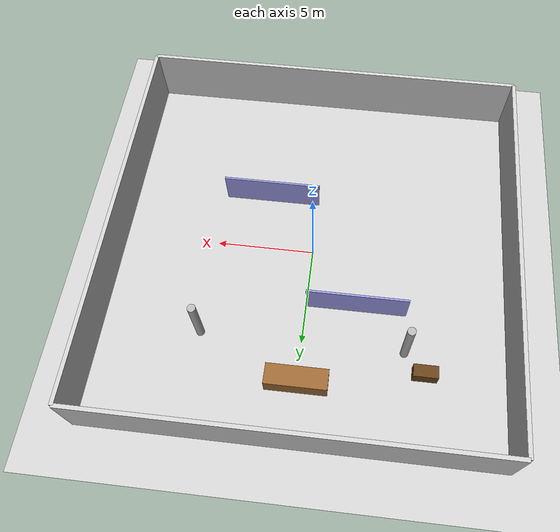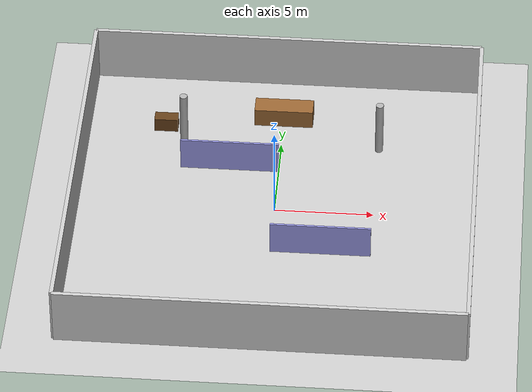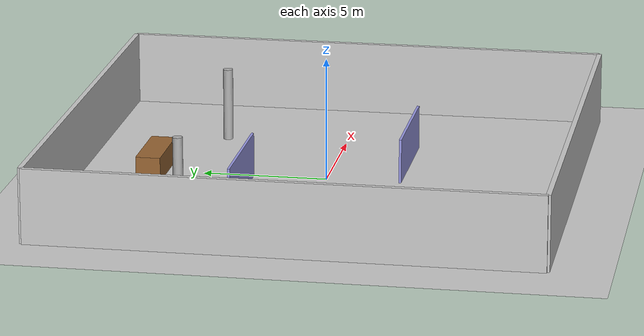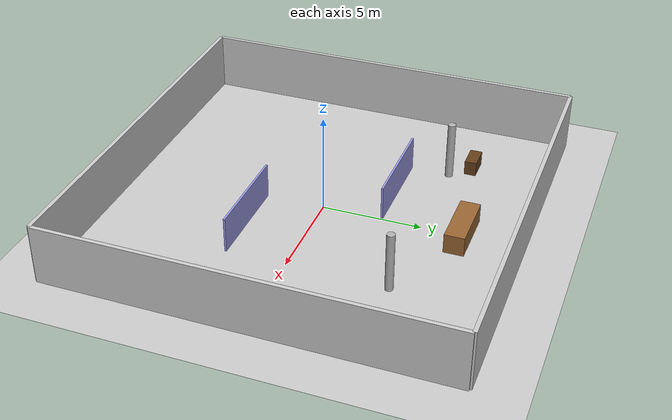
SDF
<?xml version="1.0"?>
<sdf version="1.6">
  <world name="office_world">

    <gravity>0 0 -9.81</gravity>

    <include>
      <uri>model://sun</uri>
    </include>

    <include>
      <uri>model://ground_plane</uri>
    </include>

    <!-- North wall -->
    <model name="north_wall">
      <static>true</static>
      <pose>0 10 1.5 0 0 0</pose>
      <link name="link">
        <collision name="col">
          <geometry><box><size>20 0.2 3.0</size></box></geometry>
        </collision>
        <visual name="vis">
          <geometry><box><size>20 0.2 3.0</size></box></geometry>
          <material><ambient>0.8 0.8 0.8 1</ambient></material>
        </visual>
      </link>
    </model>

    <!-- South wall -->
    <model name="south_wall">
      <static>true</static>
      <pose>0 -10 1.5 0 0 0</pose>
      <link name="link">
        <collision name="col">
          <geometry><box><size>20 0.2 3.0</size></box></geometry>
        </collision>
        <visual name="vis">
          <geometry><box><size>20 0.2 3.0</size></box></geometry>
          <material><ambient>0.8 0.8 0.8 1</ambient></material>
        </visual>
      </link>
    </model>

    <!-- East wall -->
    <model name="east_wall">
      <static>true</static>
      <pose>10 0 1.5 0 0 0</pose>
      <link name="link">
        <collision name="col">
          <geometry><box><size>0.2 20 3.0</size></box></geometry>
        </collision>
        <visual name="vis">
          <geometry><box><size>0.2 20 3.0</size></box></geometry>
          <material><ambient>0.8 0.8 0.8 1</ambient></material>
        </visual>
      </link>
    </model>

    <!-- West wall -->
    <model name="west_wall">
      <static>true</static>
      <pose>-10 0 1.5 0 0 0</pose>
      <link name="link">
        <collision name="col">
          <geometry><box><size>0.2 20 3.0</size></box></geometry>
        </collision>
        <visual name="vis">
          <geometry><box><size>0.2 20 3.0</size></box></geometry>
          <material><ambient>0.8 0.8 0.8 1</ambient></material>
        </visual>
      </link>
    </model>

    <!-- Reception desk -->
    <model name="reception_desk">
      <static>true</static>
      <pose>0 7 0.5 0 0 0</pose>
      <link name="link">
        <collision name="col">
          <geometry><box><size>3.0 1.0 1.0</size></box></geometry>
        </collision>
        <visual name="vis">
          <geometry><box><size>3.0 1.0 1.0</size></box></geometry>
          <material>
            <ambient>0.5 0.3 0.1 1</ambient>
            <diffuse>0.6 0.4 0.2 1</diffuse>
          </material>
        </visual>
      </link>
    </model>

    <!-- Divider 1 -->
    <model name="divider_1">
      <static>true</static>
      <pose>-2.5 3 0.9 0 0 0</pose>
      <link name="link">
        <collision name="col">
          <geometry><box><size>5.0 0.1 1.8</size></box></geometry>
        </collision>
        <visual name="vis">
          <geometry><box><size>5.0 0.1 1.8</size></box></geometry>
          <material><ambient>0.6 0.6 0.9 1</ambient></material>
        </visual>
      </link>
    </model>

    <!-- Divider 2 -->
    <model name="divider_2">
      <static>true</static>
      <pose>2.5 -3 0.9 0 0 0</pose>
      <link name="link">
        <collision name="col">
          <geometry><box><size>5.0 0.1 1.8</size></box></geometry>
        </collision>
        <visual name="vis">
          <geometry><box><size>5.0 0.1 1.8</size></box></geometry>
          <material><ambient>0.6 0.6 0.9 1</ambient></material>
        </visual>
      </link>
    </model>

    <!-- Waiting table -->
    <model name="waiting_table">
      <static>true</static>
      <pose>-6 6 0.375 0 0 0</pose>
      <link name="link">
        <collision name="col">
          <geometry><box><size>1.2 0.6 0.75</size></box></geometry>
        </collision>
        <visual name="vis">
          <geometry><box><size>1.2 0.6 0.75</size></box></geometry>
          <material><ambient>0.4 0.25 0.1 1</ambient></material>
        </visual>
      </link>
    </model>

    <!-- Pillar 1 -->
    <model name="pillar_1">
      <static>true</static>
      <pose>5 5 1.5 0 0 0</pose>
      <link name="link">
        <collision name="col">
          <geometry><cylinder><radius>0.2</radius><length>3.0</length></cylinder></geometry>
        </collision>
        <visual name="vis">
          <geometry><cylinder><radius>0.2</radius><length>3.0</length></cylinder></geometry>
          <material><ambient>0.7 0.7 0.7 1</ambient></material>
        </visual>
      </link>
    </model>

    <!-- Pillar 2 -->
    <model name="pillar_2">
      <static>true</static>
      <pose>-5 5 1.5 0 0 0</pose>
      <link name="link">
        <collision name="col">
          <geometry><cylinder><radius>0.2</radius><length>3.0</length></cylinder></geometry>
        </collision>
        <visual name="vis">
          <geometry><cylinder><radius>0.2</radius><length>3.0</length></cylinder></geometry>
          <material><ambient>0.7 0.7 0.7 1</ambient></material>
        </visual>
      </link>
    </model>

  </world>
</sdf>
